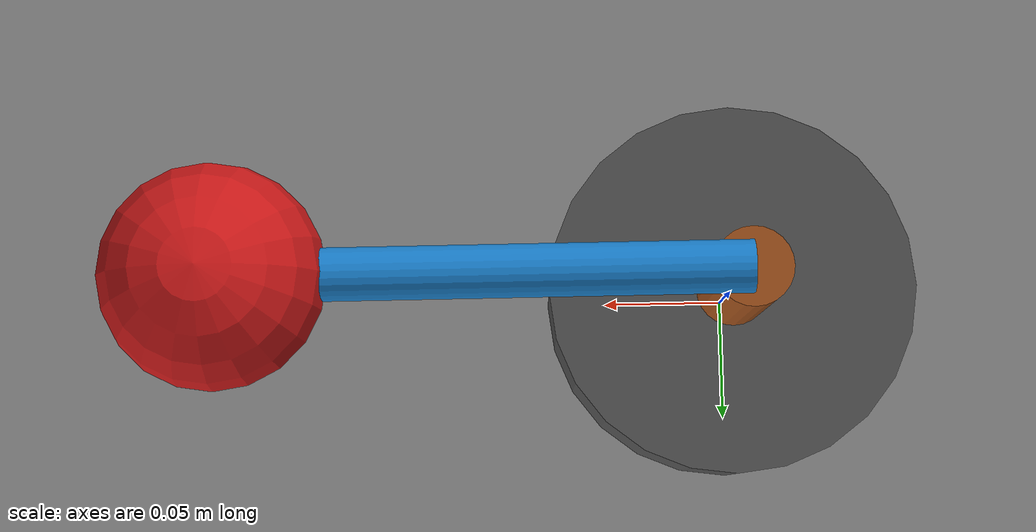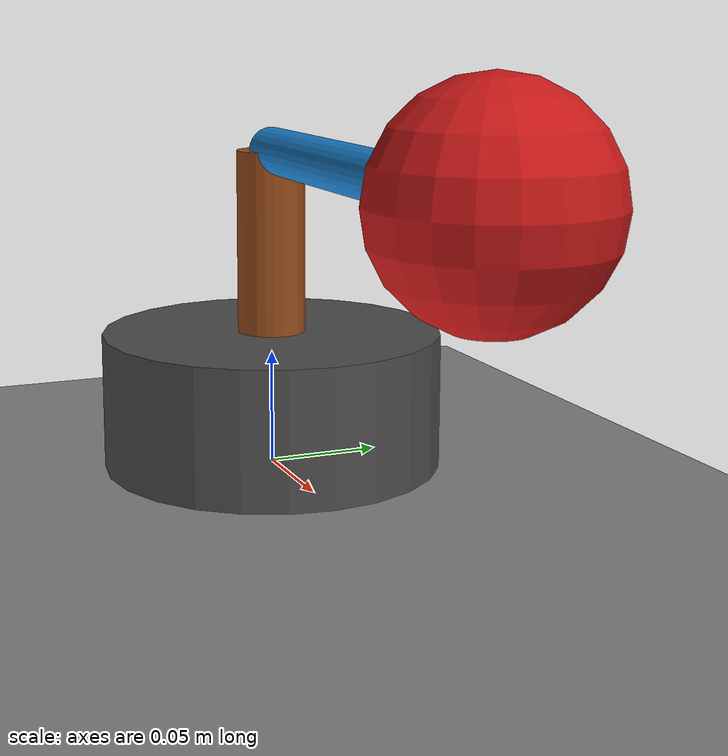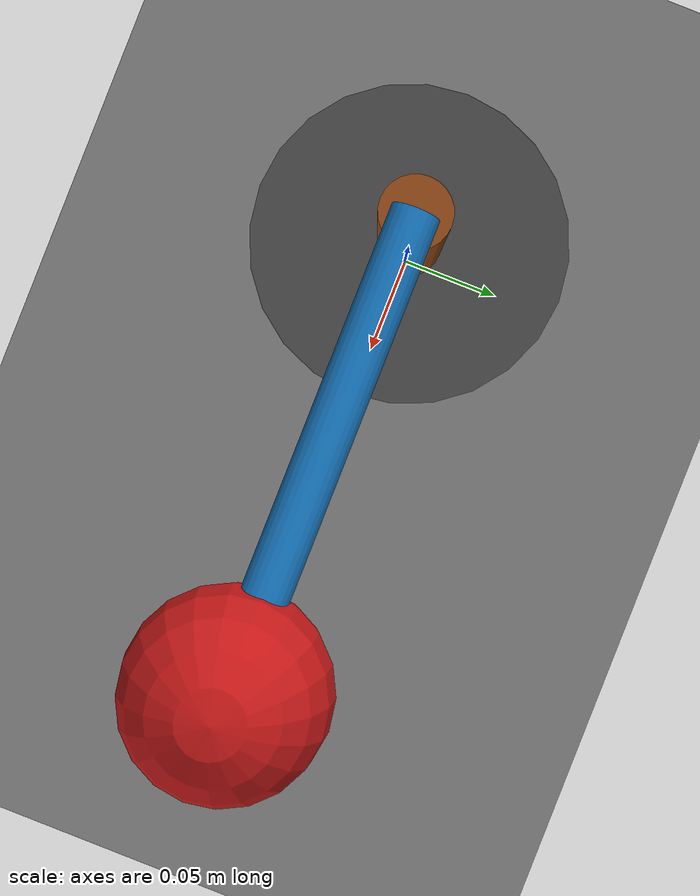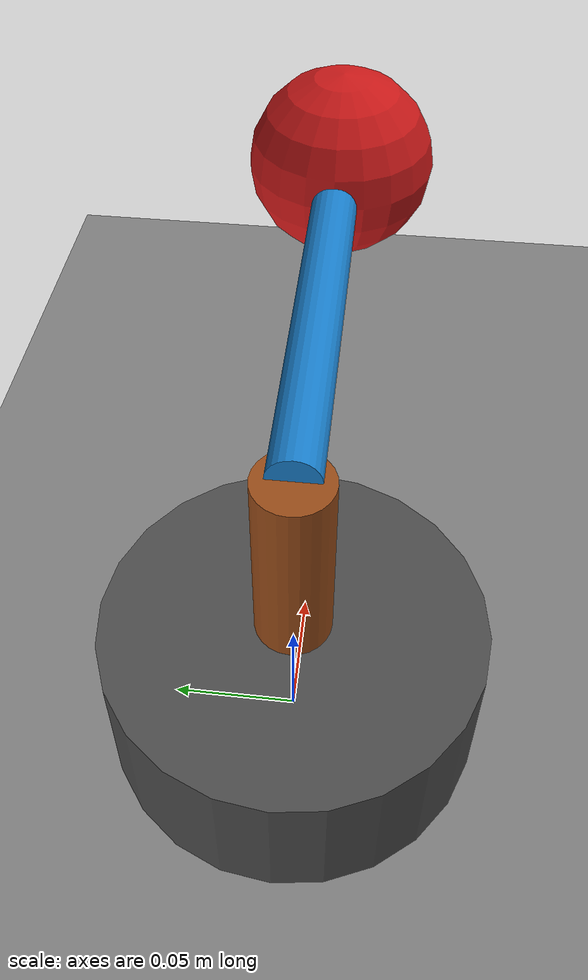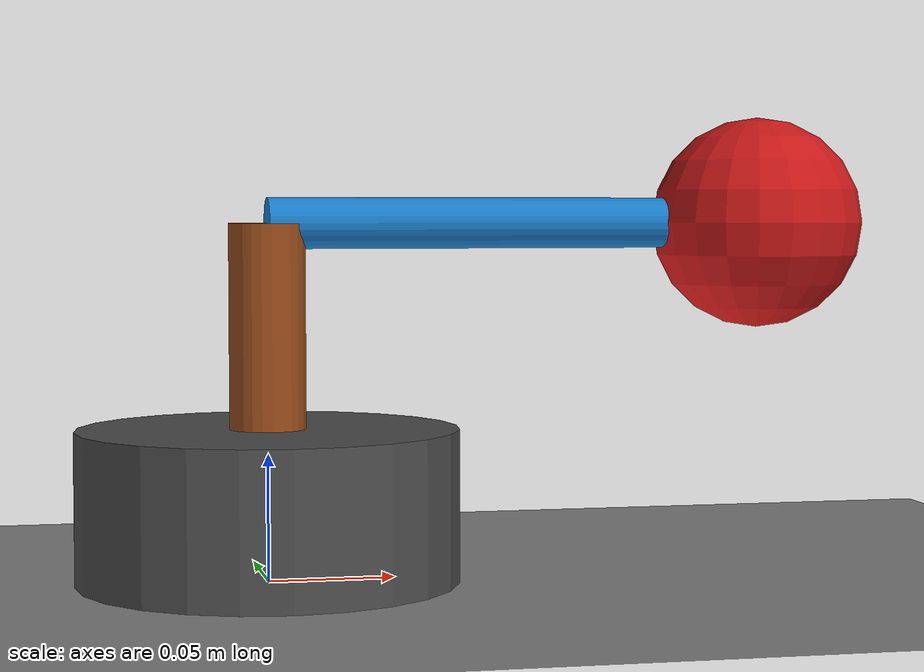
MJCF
<mujoco model="load_test">
  <option timestep="0.001" gravity="0 0 -9.81"/>

  <worldbody>
    <geom name="floor" type="plane" size="2 2 0.1"/>
    <light directional="true" pos="0 0 3" dir="0 0 -1"/>

    <body name="base" pos="0 0 0.03">
      <geom type="cylinder" size="0.075 0.03" rgba="0.3 0.3 0.3 1"/>

      <body name="link1" pos="0 0 0.07">
        <joint name="joint1" type="hinge" axis="0 0 1" limited="false" damping="0.1"/>
        <geom type="cylinder" size="0.015 0.04" rgba="0.6 0.3 0.1 1"/>
        <inertial pos="0 0 0" mass="0.5" diaginertia="0.001 0.001 0.0001"/>

        <body name="arm" pos="0.1 0 0.04">
          <geom type="cylinder" size="0.01 0.1"
                quat="0.707107 0 0.707107 0" rgba="0.1 0.5 0.8 1"/>
          <inertial pos="0 0 0" mass="0.4932300466135976"
                    diaginertia="0.00002466 0.00165643 0.00165643"/>

          <body name="load" pos="0.1 0 0">
            <geom type="sphere" size="0.042363702955951585" rgba="0.8 0.1 0.1 1"/>
            <inertial pos="0 0 0" mass="2.5"
                      diaginertia="0.00179468 0.00179468 0.00179468"/>
          </body>
        </body>
      </body>
    </body>
  </worldbody>

  <actuator>
    <motor name="motor1" joint="joint1" gear="1" ctrllimited="true" ctrlrange="-80 80"/>
  </actuator>
</mujoco>
